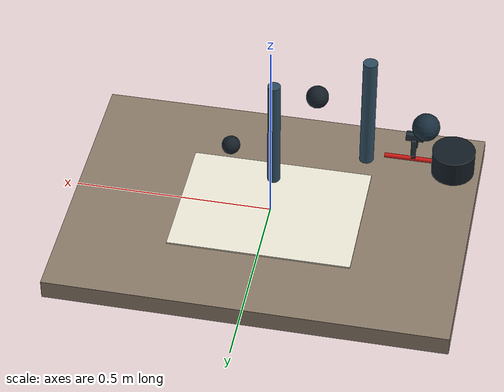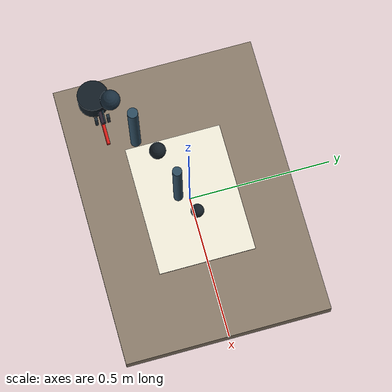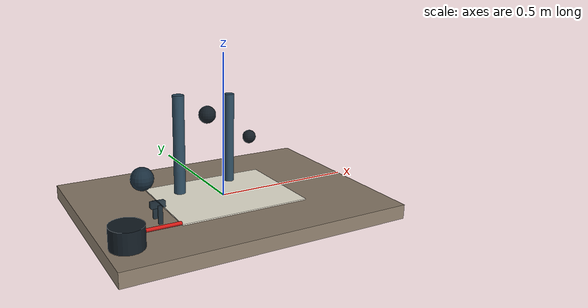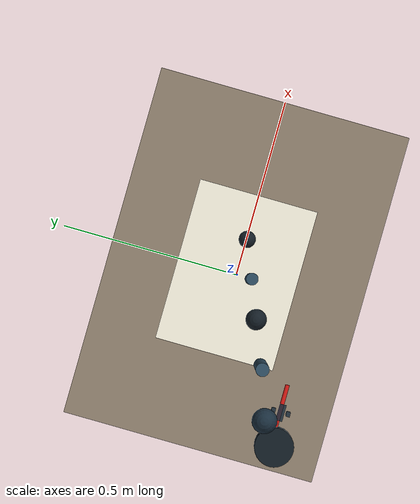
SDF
<?xml version="1.0"?>
<sdf version="1.10">
  <world name="fortune_pick_draw">
    <gui fullscreen="0">
      <camera name="user_camera">
        <pose>-0.62 -0.58 0.46 0 0.64 0.77</pose>
        <view_controller>orbit</view_controller>
        <projection_type>perspective</projection_type>
      </camera>
    </gui>
    <physics name="1ms" type="ignored">
      <max_step_size>0.001</max_step_size>
      <real_time_factor>1.0</real_time_factor>
    </physics>
    <plugin filename="gz-sim-physics-system" name="gz::sim::systems::Physics"/>
    <plugin filename="gz-sim-user-commands-system" name="gz::sim::systems::UserCommands"/>
    <plugin filename="gz-sim-scene-broadcaster-system" name="gz::sim::systems::SceneBroadcaster"/>

    <light name="sun" type="directional">
      <pose>0 0 3 0 0 0</pose>
      <diffuse>0.9 0.86 0.78 1</diffuse>
      <specular>0.25 0.25 0.25 1</specular>
      <direction>-0.4 0.3 -1</direction>
    </light>

    <model name="table">
      <static>true</static>
      <pose>0 0 -0.025 0 0 0</pose>
      <link name="table_link">
        <collision name="collision">
          <geometry><box><size>1.0 0.72 0.05</size></box></geometry>
        </collision>
        <visual name="visual">
          <geometry><box><size>1.0 0.72 0.05</size></box></geometry>
          <material><diffuse>0.55 0.49 0.42 1</diffuse></material>
        </visual>
      </link>
    </model>

    <model name="paper">
      <static>true</static>
      <pose>0 0 0.002 0 0 0</pose>
      <link name="paper_link">
        <collision name="collision">
          <geometry><box><size>0.46 0.34 0.004</size></box></geometry>
        </collision>
        <visual name="visual">
          <geometry><box><size>0.46 0.34 0.004</size></box></geometry>
          <material>
            <ambient>0.95 0.93 0.86 1</ambient>
            <diffuse>0.95 0.93 0.86 1</diffuse>
          </material>
        </visual>
      </link>
    </model>

    <model name="pen">
      <static>false</static>
      <pose>-0.33 -0.22 0.035 0 1.5708 0</pose>
      <link name="pen_link">
        <inertial>
          <mass>0.02</mass>
          <inertia>
            <ixx>0.00001</ixx><iyy>0.00001</iyy><izz>0.00001</izz>
            <ixy>0</ixy><ixz>0</ixz><iyz>0</iyz>
          </inertia>
        </inertial>
        <collision name="body_collision">
          <geometry><cylinder><radius>0.006</radius><length>0.15</length></cylinder></geometry>
        </collision>
        <visual name="body_visual">
          <geometry><cylinder><radius>0.006</radius><length>0.15</length></cylinder></geometry>
          <material><diffuse>0.82 0.1 0.08 1</diffuse></material>
        </visual>
        <visual name="tip_visual">
          <pose>0 0 -0.08 0 0 0</pose>
          <geometry><sphere><radius>0.009</radius></sphere></geometry>
          <material><diffuse>0.02 0.02 0.018 1</diffuse></material>
        </visual>
      </link>
    </model>

    <model name="piper_base">
      <static>false</static>
      <pose>-0.43 -0.23 0.035 0 0 0</pose>
      <link name="base_link">
        <visual name="base">
          <geometry><cylinder><radius>0.055</radius><length>0.07</length></cylinder></geometry>
          <material><diffuse>0.07 0.11 0.14 1</diffuse></material>
        </visual>
      </link>
    </model>

    <model name="piper_shoulder">
      <static>false</static>
      <pose>-0.36 -0.18 0.18 0 0 0</pose>
      <link name="shoulder_link">
        <visual name="shoulder">
          <geometry><sphere><radius>0.035</radius></sphere></geometry>
          <material><diffuse>0.10 0.18 0.24 1</diffuse></material>
        </visual>
      </link>
    </model>

    <model name="piper_upper_arm">
      <static>false</static>
      <pose>-0.22 -0.13 0.25 0 0 0</pose>
      <link name="upper_link">
        <visual name="upper_arm">
          <geometry><cylinder><radius>0.018</radius><length>0.31</length></cylinder></geometry>
          <material><diffuse>0.18 0.30 0.38 1</diffuse></material>
        </visual>
      </link>
    </model>

    <model name="piper_elbow">
      <static>false</static>
      <pose>-0.1 -0.08 0.32 0 0 0</pose>
      <link name="elbow_link">
        <visual name="elbow">
          <geometry><sphere><radius>0.028</radius></sphere></geometry>
          <material><diffuse>0.08 0.12 0.15 1</diffuse></material>
        </visual>
      </link>
    </model>

    <model name="piper_forearm">
      <static>false</static>
      <pose>0 -0.04 0.22 0 0 0</pose>
      <link name="forearm_link">
        <visual name="forearm">
          <geometry><cylinder><radius>0.016</radius><length>0.30</length></cylinder></geometry>
          <material><diffuse>0.18 0.30 0.38 1</diffuse></material>
        </visual>
      </link>
    </model>

    <model name="piper_wrist">
      <static>false</static>
      <pose>0.1 0 0.2 0 0 0</pose>
      <link name="wrist_link">
        <visual name="wrist">
          <geometry><sphere><radius>0.023</radius></sphere></geometry>
          <material><diffuse>0.08 0.12 0.15 1</diffuse></material>
        </visual>
      </link>
    </model>

    <model name="ghost_gripper">
      <static>false</static>
      <pose>-0.33 -0.22 0.11 0 0 0</pose>
      <link name="gripper_link">
        <visual name="palm">
          <geometry><box><size>0.045 0.018 0.018</size></box></geometry>
          <material><diffuse>0.1 0.18 0.24 0.85</diffuse></material>
        </visual>
        <visual name="finger_l">
          <pose>0 0.021 -0.025 0 0 0</pose>
          <geometry><box><size>0.012 0.01 0.055</size></box></geometry>
          <material><diffuse>0.1 0.18 0.24 0.85</diffuse></material>
        </visual>
        <visual name="finger_r">
          <pose>0 -0.021 -0.025 0 0 0</pose>
          <geometry><box><size>0.012 0.01 0.055</size></box></geometry>
          <material><diffuse>0.1 0.18 0.24 0.85</diffuse></material>
        </visual>
      </link>
    </model>
  </world>
</sdf>
